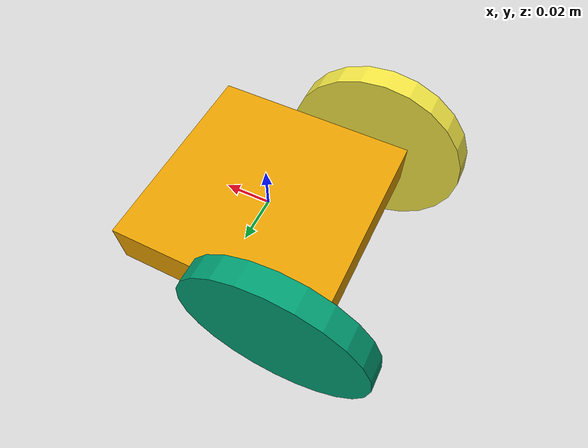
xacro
<?xml version="1.0"?>
<robot name="r4" xmlns:xacro="http://ros.org/wiki/xacro">

    <!-- The base values are fixed from the modelling. Do not change-->
    <xacro:property name="base_length" value="0.09" />
    <xacro:property name="base_width" value="0.09" />
    <xacro:property name="base_height" value="0.02" />

    <xacro:property name="no" value="4" />

    <!-- Wheel parameters-->
    <xacro:property name="wheel_radius" value="0.040" />
    <xacro:property name="wheel_length" value="0.01" />
    <xacro:property name="wheel_x" value="-0.03" />
    <xacro:property name="left_wheel_y" value="0.050" />
    <xacro:property name="right_wheel_y" value="-0.050" />

    <!-- Caster parameters-->
    <xacro:property name="caster_base_radius" value="0.005" />
    <xacro:property name="caster_base_length" value="0.01" />
    <xacro:property name="caster_wheel_radius" value="0.015" />
    <xacro:property name="caster_wheel_length" value="0.01" />
    <xacro:property name="caster_base_x" value="0.040" />
    <xacro:property name="caster_base_z" value="-0.01" />
    <xacro:property name="caster_wheel_z" value="-0.02" />

    <!-- Main vehicle body-->
    <link name="vehicle_body_${no}">
        <inertial>
            <mass value="0.5" />
            <origin xyz="0 0 0" />
            <inertia ixx="0.001" ixy="0.0" ixz="0.0" iyy="0.001" iyz="0.0" izz="0.001" />
          </inertial>
        <collision>
            <geometry>
                <box size="${base_length} ${base_width} ${base_height}"/>
            </geometry>
            <surface>
                <friction>
                    <ode>
                        <mu>0.0</mu>
                        <mu2>0.0</mu2>
                    </ode>
                </friction>
                <contact>
                    <ode>
                        <kp>1000000.0</kp>
                        <kd>1000000.0</kd>
                    </ode>
                </contact>
            </surface>
        </collision>
        <visual>
            <geometry>
                <mesh filename="package://f1/meshes/m44.dae"/>
            </geometry>
        </visual>
    </link>

    <!-- Dummy root link-->
    <link name="root_link"/>

    <!-- Joint for the root and base link-->
    <joint name="root_base_joint" type="fixed">
        <origin xyz="0.0 0.0 0.0" rpy="0.0 0.0 0.0"/>
        <parent link="root_link"/>
        <child link="vehicle_body_${no}"/>
        <axis xyz="0.0 0.0 0.0"/>
        <limit lower="0.0" upper="0.0" effort="0.0" velocity="0.0"/>
    </joint>

    <!-- Left wheel link-->
    <link name="left_wheel_${no}">
        <inertial>
            <origin xyz="0.0 0 0.0" rpy="1.57 0.0 0.0"/>
            <mass value="0.2"/>
            <inertia ixx="0.001" ixy="0.0" ixz="0.0" iyy="0.001" iyz="0.0" izz="0.001" />
        </inertial>
        <collision>
            <origin xyz="0.0 0 0.0" rpy="1.57 0.0 0.0"/>
            <geometry>
                <cylinder radius="${wheel_radius}" length="${wheel_length}"/>
            </geometry>

            <surface>
                <friction>
                    <ode>
                        <mu>0.3</mu>
                        <mu2>0.3</mu2>
                    </ode>
                </friction>
                <contact>
                    <ode>
                        <kp>1000000.0</kp>
                        <kd>1000000.0</kd>
                        <min_depth>0.0</min_depth>
                    </ode>
                </contact>
            </surface>
        </collision>
        <visual>
            <origin xyz="0.0 0 0.0" rpy="1.57 0.0 0.0"/>
            <geometry>
                <cylinder radius="${wheel_radius}" length="${wheel_length}"/>
            </geometry>
        </visual>
    </link>

    <!-- Right wheel link-->
    <link name="right_wheel_${no}">
        <inertial>
            <origin xyz="0.0 0 0.0" rpy="1.57 0.0 0.0"/>
            <mass value="0.2"/>
            <inertia ixx="0.001" ixy="0.0" ixz="0.0" iyy="0.001" iyz="0.0" izz="0.001" />
        </inertial>
        <collision>
            <origin xyz="0.0 0 0.0" rpy="1.57 0.0 0.0"/>
            <geometry>
                <cylinder radius="${wheel_radius}" length="${wheel_length}"/>
            </geometry>

            <surface>
                <friction>
                    <ode>
                        <mu>0.3</mu>
                        <mu2>0.3</mu2>
                    </ode>
                </friction>
                <contact>
                    <ode>
                        <kp>1000000.0</kp>
                        <kd>1000000.0</kd>
                        <min_depth>0.0</min_depth>
                    </ode>
                </contact>
            </surface>

        </collision>
        <visual>
            <origin xyz="0.0 0 0.0" rpy="1.57 0.0 0.0"/>
            <geometry>
                <cylinder radius="${wheel_radius}" length="${wheel_length}"/>
            </geometry>
        </visual>
    </link>

    <!-- Left wheel to the base joint-->
    <joint name="left_wheel_joint_${no}" type="continuous">
        <origin xyz="${wheel_x} ${left_wheel_y} 0.0" rpy="0.0 0.0 0.0"/>
        <parent link="vehicle_body_${no}"/>
        <child link="left_wheel_${no}"/>
        <axis xyz="0.0 1.0 0.0"/>
    </joint>

    <!-- Right wheel to the base joint-->
    <joint name="right_wheel_joint_${no}" type="continuous">
        <origin xyz="${wheel_x} ${right_wheel_y} 0.0" rpy="0.0 0.0 0.0"/>
        <parent link="vehicle_body_${no}"/>
        <child link="right_wheel_${no}"/>
        <axis xyz="0.0 1.0 0.0"/>
    </joint>

    <!-- Left wheel transmission-->
    <transmission name="left_wheel_trans_${no}" type="SimpleTransmission">
        <type>transmission_interface/SimpleTransmission</type>
        <actuator name="left_wheel_motor_${no}">
            <mechanicalReduction>1</mechanicalReduction>
            <hardwareInterface>hardware_interface/VelocityJointInterface</hardwareInterface>
        </actuator>
        <joint name="left_wheel_joint_${no}">
            <hardwareInterface>hardware_interface/VelocityJointInterface</hardwareInterface>
        </joint>
    </transmission>

    <!-- Right wheel transmission-->
    <transmission name="right_wheel_trans_${no}" type="SimpleTransmission">
        <type>transmission_interface/SimpleTransmission</type>
        <actuator name="right_wheel_motor_${no}">
            <mechanicalReduction>1</mechanicalReduction>
            <hardwareInterface>hardware_interface/VelocityJointInterface</hardwareInterface>
        </actuator>
        <joint name="right_wheel_joint_${no}">
            <hardwareInterface>hardware_interface/VelocityJointInterface</hardwareInterface>
        </joint>
    </transmission>

    <!-- Caster wheel link-->
    <link name="caster_wheel_link_${no}">
        <inertial>
            <mass value="0.03837"/>
            <origin xyz="0.0 0.0 0.0"/>
            <inertia  ixx="0.000008221" ixy="0" ixz="0" iyy="0.000013003" iyz="0" izz="0.000008221" />
        </inertial>
        <visual>
            <origin xyz="0.0 0.0 0.0" rpy="1.57 0.0 0.0"/>
            <geometry>
                <cylinder radius="${caster_wheel_radius}" length="${caster_wheel_length}"/>
            </geometry>
        </visual>
        <collision>
            <origin xyz="0.0 0.0 0.0" rpy="1.57 0.0 0.0"/>
            <geometry>
                <cylinder radius="${caster_wheel_radius}" length="${caster_wheel_length}"/>
            </geometry>
        </collision>
    </link>

    <!-- Caster base link-->
    <link name="caster_base_link_${no}">
        <inertial>
            <mass value="0.06597" />
            <origin xyz="0.0 0.0 0.0"/>
            <inertia  ixx="0.000039912" ixy="0" ixz="0.000017794" iyy="0.000050728" iyz="0" izz="0.000035261" />
        </inertial>
        <visual>
            <origin xyz="0.0 0.0 0.0" rpy="0.0 0.0 0.0"/>
            <geometry>
                <cylinder radius="${caster_base_radius}" length="${caster_base_length}"/>
            </geometry>
        </visual>
        <collision>
            <origin xyz="0.0 0.0 0.0"/>
            <geometry>
                <cylinder radius="${caster_base_radius}" length="${caster_base_length}"/>
            </geometry>
        </collision>
    </link>

    <!-- Body to the caster base joint-->
    <joint name="body_casterbase_joint_${no}" type="continuous">
        <origin xyz="${caster_base_x} 0.0 ${caster_base_z}" rpy="0.0 0 0.0"/>
        <parent link="vehicle_body_${no}"/>
        <child link="caster_base_link_${no}"/>
        <axis xyz="0.0 0.0 1.0"/>
        <limit lower="0.0" upper="0.0" effort="0.0" velocity="0.0"/>
    </joint>

    <!-- Caster base to the caster wheel joint-->
    <joint name="casterbase_casterwheel_joint_${no}" type="continuous">
        <origin xyz="0.0 0.0 ${caster_wheel_z}" rpy="0.0 0.0 0.0"/>
        <parent link="caster_base_link_${no}"/>
        <child link="caster_wheel_link_${no}"/>
        <axis xyz="0.0 1.0 0.0"/>
        <limit lower="0.0" upper="0.0" effort="0.0" velocity="0.0"/>
    </joint>

    <!-- Gazebo control plugins-->
    <gazebo>
        <plugin name="gazebo_ros_control" filename= "libgazebo_ros_control.so">
         <robotNamespace>r4</robotNamespace>
        </plugin>
      </gazebo>
</robot>
